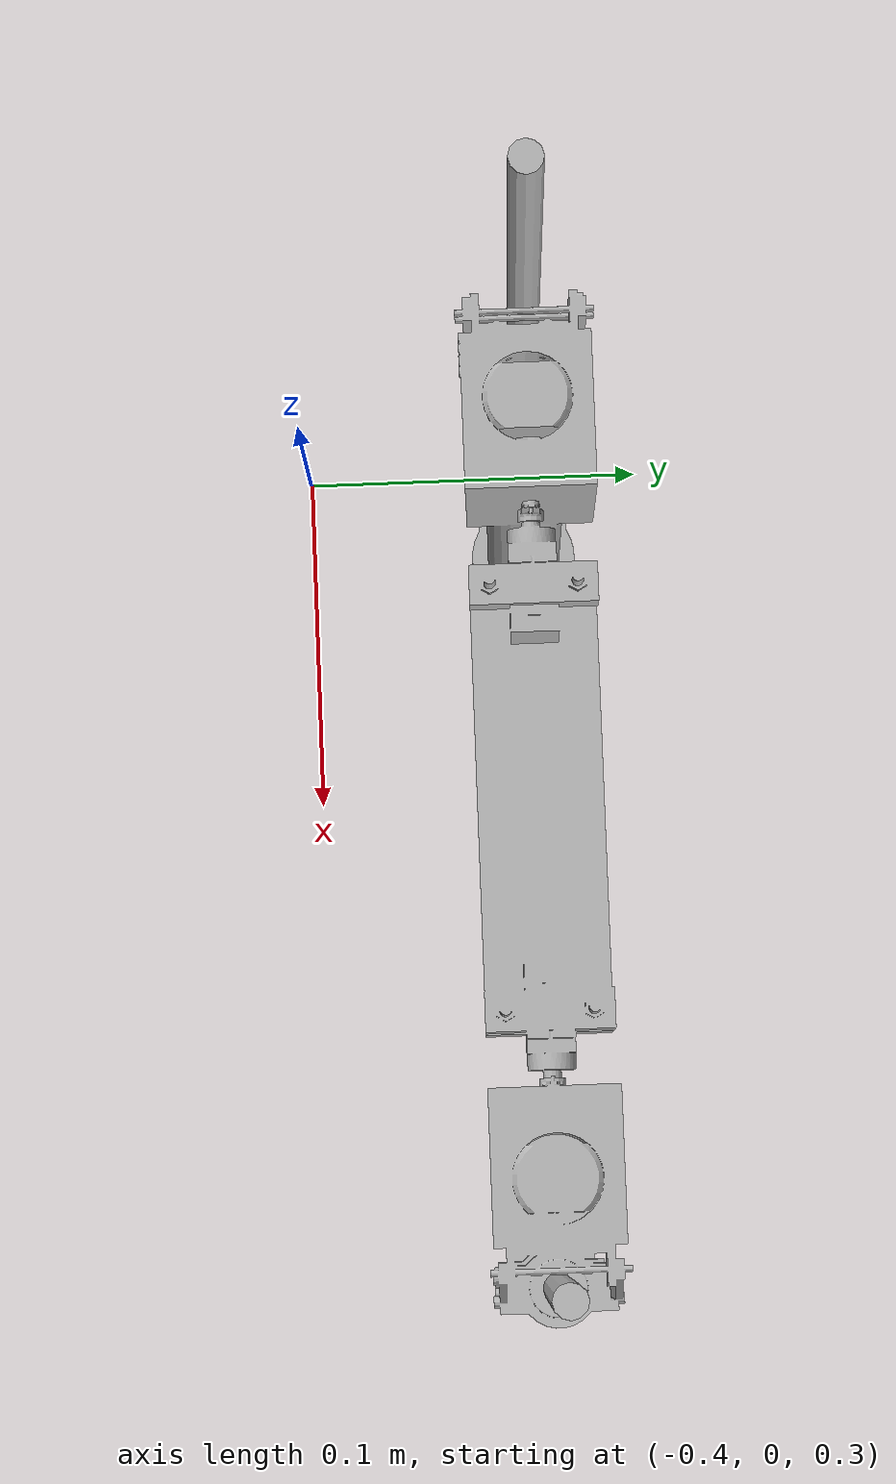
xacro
<?xml version="1.0" ?>
<robot name="bot" xmlns:xacro="http://www.ros.org/wiki/xacro">

<xacro:include filename="$(find bot_description)/urdf/materials.xacro" />
<xacro:include filename="$(find bot_description)/urdf/bot.trans" />
<xacro:include filename="$(find bot_description)/urdf/bot.gazebo" />
<link name="base_link">
  <inertial>
    <origin rpy="0 0 0" xyz="-0.273515310417399 0.0641923281592633 0.549094606768639"/>
    <mass value="0.3413535466999629"/>
    <inertia ixx="5.9e-05" ixy="-0.0" ixz="-0.0" iyy="0.000497" iyz="0.0" izz="0.000496"/>
  </inertial>
  <visual>
    <origin rpy="0 0 0" xyz="0 0 0"/>
    <geometry>
      <mesh filename="package://bot_description/meshes/base_link.stl" scale="0.001 0.001 0.001"/>
    </geometry>
    <material name="silver"/>
  </visual>
  <collision>
    <origin rpy="0 0 0" xyz="0 0 0"/>
    <geometry>
      <mesh filename="package://bot_description/meshes/base_link.stl" scale="0.001 0.001 0.001"/>
    </geometry>
  </collision>
</link>

<link name="servo_arm_1_1_1">
  <inertial>
    <origin rpy="0 0 0" xyz="0.040123964751155816 2.284167705488005e-05 -0.13042234430764715"/>
    <mass value="0.31691317622323045"/>
    <inertia ixx="0.002875" ixy="0.0" ixz="-2.3e-05" iyy="0.002924" iyz="-0.0" izz="0.000106"/>
  </inertial>
  <visual>
    <origin rpy="0 0 0" xyz="0.203153 -0.064192 -0.566678"/>
    <geometry>
      <mesh filename="package://bot_description/meshes/servo_arm_1_1_1.stl" scale="0.001 0.001 0.001"/>
    </geometry>
    <material name="silver"/>
  </visual>
  <collision>
    <origin rpy="0 0 0" xyz="0.203153 -0.064192 -0.566678"/>
    <geometry>
      <mesh filename="package://bot_description/meshes/servo_arm_1_1_1.stl" scale="0.001 0.001 0.001"/>
    </geometry>
  </collision>
</link>

<link name="servo_arm_1_1_Mirror__1">
  <inertial>
    <origin rpy="0 0 0" xyz="-0.04012358502543206 2.284166630503459e-05 -0.13042234045956508"/>
    <mass value="0.31691318435832444"/>
    <inertia ixx="0.002875" ixy="-0.0" ixz="2.3e-05" iyy="0.002924" iyz="-0.0" izz="0.000106"/>
  </inertial>
  <visual>
    <origin rpy="0 0 0" xyz="0.343878 -0.064192 -0.566678"/>
    <geometry>
      <mesh filename="package://bot_description/meshes/servo_arm_1_1_Mirror__1.stl" scale="0.001 0.001 0.001"/>
    </geometry>
    <material name="silver"/>
  </visual>
  <collision>
    <origin rpy="0 0 0" xyz="0.343878 -0.064192 -0.566678"/>
    <geometry>
      <mesh filename="package://bot_description/meshes/servo_arm_1_1_Mirror__1.stl" scale="0.001 0.001 0.001"/>
    </geometry>
  </collision>
</link>

<link name="dsnu-20-200-pps-a_03_1_1_1">
  <inertial>
    <origin rpy="0 0 0" xyz="0.019645702220741745 1.374704084221301e-05 -0.07233661753710188"/>
    <mass value="0.3040090766287068"/>
    <inertia ixx="0.006662" ixy="-0.0" ixz="-0.000264" iyy="0.006701" iyz="-0.0" izz="4.6e-05"/>
  </inertial>
  <visual>
    <origin rpy="0 0 0" xyz="0.179003 -0.064193 -0.296678"/>
    <geometry>
      <mesh filename="package://bot_description/meshes/dsnu-20-200-pps-a_03_1_1_1.stl" scale="0.001 0.001 0.001"/>
    </geometry>
    <material name="silver"/>
  </visual>
  <collision>
    <origin rpy="0 0 0" xyz="0.179003 -0.064193 -0.296678"/>
    <geometry>
      <mesh filename="package://bot_description/meshes/dsnu-20-200-pps-a_03_1_1_1.stl" scale="0.001 0.001 0.001"/>
    </geometry>
  </collision>
</link>

<link name="dsnu-20-200-pps-a_03_1_1_Mirror__1">
  <inertial>
    <origin rpy="0 0 0" xyz="-0.019645323075704824 1.374704085707612e-05 -0.07233661739654718"/>
    <mass value="0.3040090763168277"/>
    <inertia ixx="0.006662" ixy="0.0" ixz="0.000264" iyy="0.006701" iyz="-0.0" izz="4.6e-05"/>
  </inertial>
  <visual>
    <origin rpy="0 0 0" xyz="0.368028 -0.064193 -0.296678"/>
    <geometry>
      <mesh filename="package://bot_description/meshes/dsnu-20-200-pps-a_03_1_1_Mirror__1.stl" scale="0.001 0.001 0.001"/>
    </geometry>
    <material name="silver"/>
  </visual>
  <collision>
    <origin rpy="0 0 0" xyz="0.368028 -0.064193 -0.296678"/>
    <geometry>
      <mesh filename="package://bot_description/meshes/dsnu-20-200-pps-a_03_1_1_Mirror__1.stl" scale="0.001 0.001 0.001"/>
    </geometry>
  </collision>
</link>

<joint name="Rev22" type="revolute">
  <origin rpy="0 0 0" xyz="-0.203153 0.064192 0.566678"/>
  <parent link="base_link"/>
  <child link="servo_arm_1_1_1"/>
  <axis xyz="1.0 0.0 0.0"/>
  <limit effort="100" lower="-1.570796" upper="1.570796" velocity="100"/>
</joint>

<joint name="Rev23" type="revolute">
  <origin rpy="0 0 0" xyz="-0.343878 0.064192 0.566678"/>
  <parent link="base_link"/>
  <child link="servo_arm_1_1_Mirror__1"/>
  <axis xyz="1.0 0.0 0.0"/>
  <limit effort="100" lower="-1.570796" upper="1.570796" velocity="100"/>
</joint>

<joint name="SliderR" type="prismatic">
  <origin rpy="0 0 0" xyz="0.02415 1e-06 -0.27"/>
  <parent link="servo_arm_1_1_1"/>
  <child link="dsnu-20-200-pps-a_03_1_1_1"/>
  <axis xyz="0.0 0.0 -1.0"/>
  <limit effort="100" lower="0.0" upper="0.19" velocity="100"/>
</joint>

<joint name="SliderL" type="prismatic">
  <origin rpy="0 0 0" xyz="-0.02415 1e-06 -0.27"/>
  <parent link="servo_arm_1_1_Mirror__1"/>
  <child link="dsnu-20-200-pps-a_03_1_1_Mirror__1"/>
  <axis xyz="0.0 0.0 -1.0"/>
  <limit effort="100" lower="0.0" upper="0.19" velocity="100"/>
</joint>

</robot>

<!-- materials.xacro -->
<robot name="bot" xmlns:xacro="http://www.ros.org/wiki/xacro" >

<material name="silver_default">
  <color rgba="0.700 0.700 0.700 1.000"/>
</material>

<material name="silver">
  <color rgba="0.700 0.700 0.700 1.000"/>
</material>

</robot>

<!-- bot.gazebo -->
<robot name="bot" xmlns:xacro="http://www.ros.org/wiki/xacro" >

<xacro:property name="body_color" value="Gazebo/Silver" />

<gazebo>
    <plugin name="gazebo_ros_control" filename="libgazebo_ros_control.so">
        <robotNamespace>/bot</robotNamespace>
    </plugin>
</gazebo>

<gazebo reference="base_link">
  <material>${body_color}</material>
  <mu1>0.2</mu1>
  <mu2>0.2</mu2>
  <selfCollide>true</selfCollide>
  <gravity>true</gravity>
</gazebo>

<gazebo reference="servo_arm_1_1_1">
  <material>${body_color}</material>
  <mu1>0.2</mu1>
  <mu2>0.2</mu2>
  <selfCollide>true</selfCollide>
</gazebo>

<gazebo reference="servo_arm_1_1_Mirror__1">
  <material>${body_color}</material>
  <mu1>0.2</mu1>
  <mu2>0.2</mu2>
  <selfCollide>true</selfCollide>
</gazebo>

<gazebo reference="dsnu-20-200-pps-a_03_1_1_Mirror__1">
  <material>${body_color}</material>
  <mu1>0.2</mu1>
  <mu2>0.2</mu2>
  <selfCollide>true</selfCollide>
</gazebo>

<gazebo reference="dsnu-20-200-pps-a_03_1_1_1">
  <material>${body_color}</material>
  <mu1>0.2</mu1>
  <mu2>0.2</mu2>
  <selfCollide>true</selfCollide>
</gazebo>

</robot>
